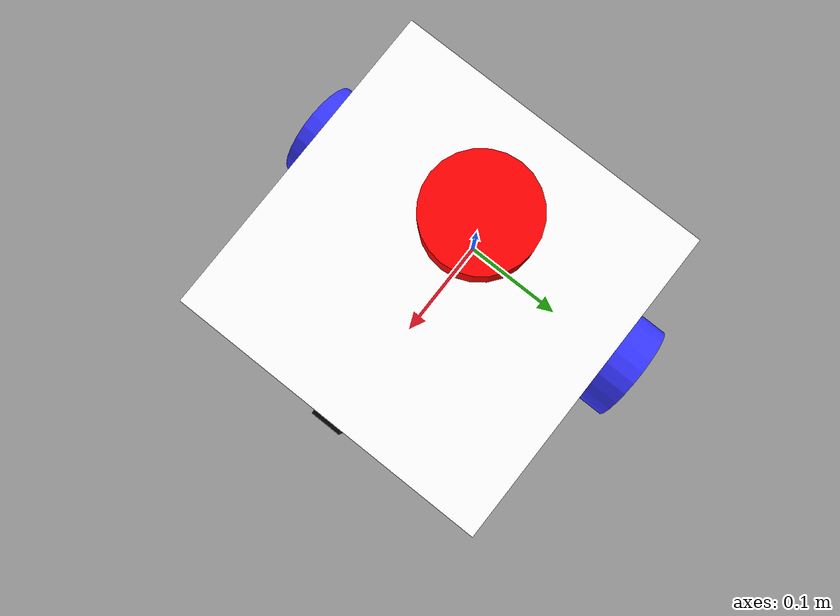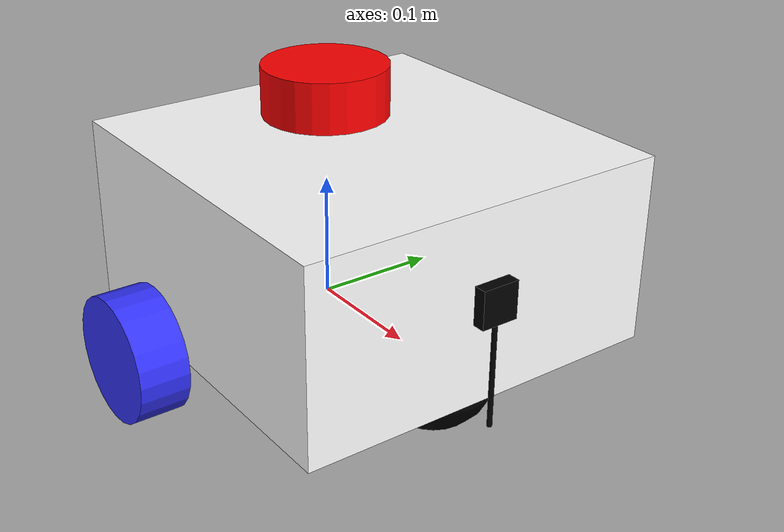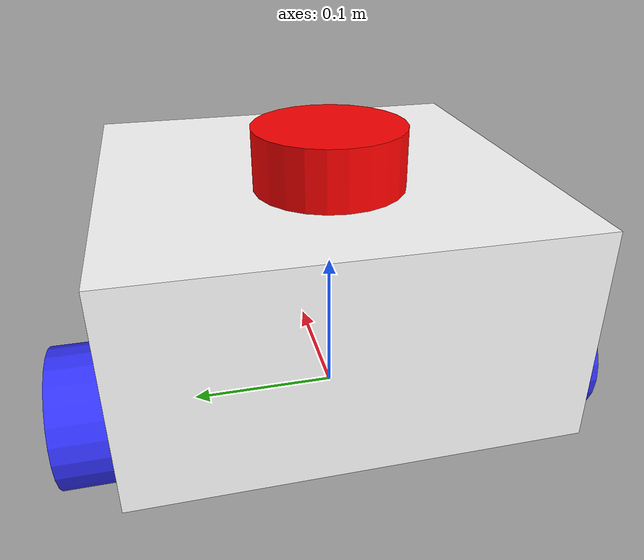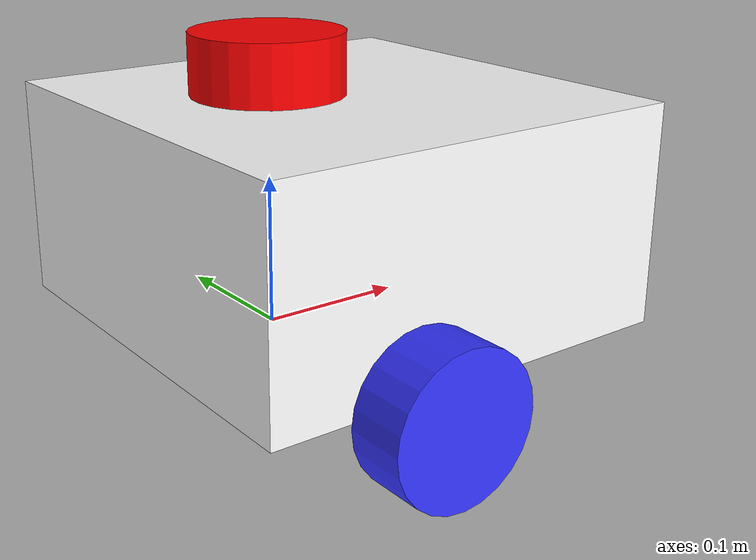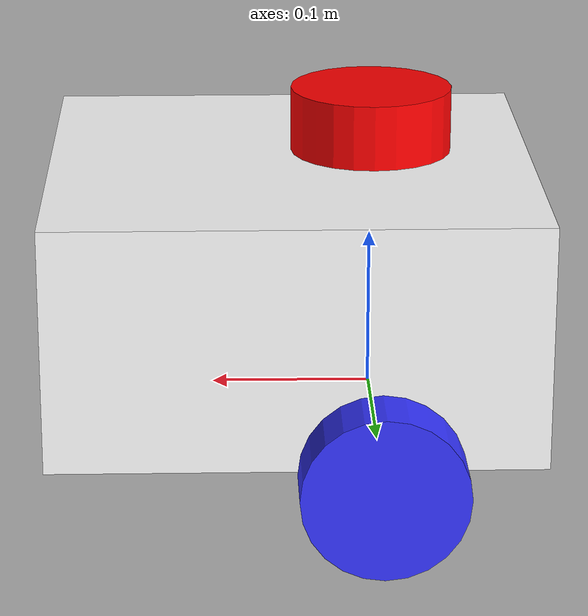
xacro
<?xml version="1.0"?>
<robot name="dd_bot" xmlns:xacro="http://ros.org/wiki/xacro">
    <xacro:include filename="robot_core.xacro"/>
    <xacro:include filename="ros2_control.xacro"/>
    <xacro:include filename="lidar.xacro"/>
    <xacro:include filename="camera.xacro"/>
</robot>

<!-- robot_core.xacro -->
<robot xmlns:xacro="http://ros.org/wiki/xacro">

    <xacro:include filename="inertial_macros.xacro"/>

    <material name="white">
        <color rgba="1 1 1 1" />
    </material>

    <material name="orange">
        <color rgba="1 0.3 0.1 1"/>
    </material>

    <material name="blue">
        <color rgba="0.2 0.2 1 1"/>
    </material>

    <material name="black">
        <color rgba="0 0 0 1"/>
    </material>

    <material name="red">
        <color rgba="1 0 0 1"/>
    </material>

    <!-- Base link -->
    <link name="base_link">

    </link>

    <joint name="base_footprint_joint" type="fixed">
        <parent link="base_link"/>
        <child link="base_footprint"/>
        <origin xyz="0 0 0" rpy="0 0 0"/>
    </joint>

    <link name="base_footprint">
    </link>

    <!-- Chassis link -->
    <joint name="chassis_joint" type="fixed">
        <parent link="base_link"/>
        <child link="chassis"/>
        <origin xyz="-0.1 0 0"/>
    </joint>

    <link name="chassis">
        <visual>
            <origin xyz="0.15 0 0.075"/>
            <geometry>
                <box size="0.3 0.3 0.15"/>
            </geometry>
            <material name="white"/>
        </visual>
        <collision>
            <origin xyz="0.15 0 0.075"/>
            <geometry>
                <box size="0.3 0.3 0.15"/>
            </geometry>
        </collision>
        <xacro:inertial_box mass="0.5" x= "0.3" y="0.3" z="0.15">
            <origin xyz="0.15 0 0.075" rpy="0 0 0"/>
        </xacro:inertial_box>
    </link>

    <gazebo reference="chassis">
        <material>Gazebo/White</material>
    </gazebo>

    <!-- Left wheel link -->
    <joint name="left_wheel_joint" type="continuous">
        <parent link="base_link"/>
        <child link="left_wheel"/>
        <origin xyz="0 0.175 0" rpy="-${pi/2} 0 0"></origin>
        <axis xyz="0 0 1"/>
    </joint>

    <link name="left_wheel">
        <visual>
            <geometry>
                <cylinder radius="0.05" length="0.04"/>
            </geometry>
            <material name="blue"></material>
        </visual>
        <collision>
            <geometry>
                <cylinder radius="0.05" length="0.04"/>
            </geometry>
        </collision>
        <xacro:inertial_cylinder mass="0.1" length="0.04" radius="0.05">
            <origin xyz="0 0 0" rpy="0 0 0"/>
        </xacro:inertial_cylinder>
    </link>

    <gazebo reference="left_wheel">
        <material>Gazebo/Blue</material>
    </gazebo>

    <!-- Right wheel link -->

    <joint name="right_wheel_joint" type="continuous">
        <parent link="base_link"/>
        <child link="right_wheel"/>
        <origin xyz="0 -0.175 0" rpy="${pi/2} 0 0"></origin>
        <axis xyz="0 0 -1"/>
    </joint>

    <link name="right_wheel">
        <visual>
            <geometry>
                <cylinder radius="0.05" length="0.04"/>
            </geometry>
            <material name="blue"></material>
        </visual>
        <collision>
            <geometry>
                <cylinder radius="0.05" length="0.04"/>
            </geometry>
        </collision>
        <xacro:inertial_cylinder mass="0.1" length="0.04" radius="0.05">
            <origin xyz="0 0 0" rpy="0 0 0"/>
        </xacro:inertial_cylinder>
    </link>

    <gazebo reference="right_wheel">
        <material>Gazebo/Blue</material>
    </gazebo>

    <!-- Caster wheel -->

    <joint name="caster_wheel_joint" type="fixed">
        <parent link="chassis"></parent>
        <child link="caster_wheel"/>
        <origin xyz="0.24 0 0"/>
    </joint>

    <link name="caster_wheel">
        <visual>
            <geometry>
                <sphere radius="0.05"/>
            </geometry>
            <material name="black"/>
        </visual>
        <collision>
            <geometry>
                <sphere radius="0.05"/>
            </geometry>
        </collision>
        <xacro:inertial_sphere mass="0.1" radius="0.05">
            <origin xyz="0 0 0" rpy="0 0 0"/>
        </xacro:inertial_sphere>
    </link>

    <gazebo reference="caster_wheel">
        <material>Gazebo/Black</material>
        <mu1 value="0.001"/>
        <mu2 value="0.001"/>
    </gazebo>
</robot>

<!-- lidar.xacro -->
<robot xmlns:xacro="http://ros.org/wiki/xacro">
    <joint name="laser_joint" type="fixed">
        <parent link="chassis"/>
        <child link="laser_frame"/>
        <origin xyz="0.1 0 0.175" rpy="0 0 0"/>
    </joint>

    <link name="laser_frame">
        <visual>
            <geometry>
                <cylinder radius="0.05" length="0.04"/>
            </geometry>
            <material name="red"></material>
        </visual>
        <collision>
            <geometry>
                <cylinder radius="0.05" length="0.04"/>
            </geometry>
        </collision>
        <xacro:inertial_cylinder mass="0.1" length="0.04" radius="0.05">
            <origin xyz="0 0 0" rpy="0 0 0"/>
        </xacro:inertial_cylinder>
    </link>

    <gazebo reference="laser_frame">
        <material>Gazebo/Red</material>
        <sensor name="laser" type="gpu_lidar">
            <pose> 0 0 0 0 0 0 </pose>
            <always_on>true</always_on>
            <visualize>true</visualize>
            <update_rate>10</update_rate>
            <lidar>
                <scan>
                    <horizontal>
                        <samples>360</samples>
                        <resolution>1</resolution>
                        <min_angle>-3.14159</min_angle>
                        <max_angle> 3.14159</max_angle>
                    </horizontal>

                    <vertical>
                        <samples>1</samples>
                        <resolution>1</resolution>
                        <min_angle>0</min_angle>
                        <max_angle>0</max_angle>
                    </vertical>
                </scan>
                <range>
                    <min>0.15</min>
                    <max>20.0</max>
                    <resolution>0.01</resolution>
                </range>
            </lidar>
            <topic>scan</topic>
            <gz_frame_id>laser_frame</gz_frame_id>
        </sensor>
    </gazebo>
</robot>

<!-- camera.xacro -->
<robot xmlns:xacro="http://ros.org/wiki/xacro">
    <joint name="camera_joint" type="fixed">
        <parent link="chassis"/>
        <child link="camera_link"/>
        <origin xyz="0.305 0 0.08" rpy="0 0 0"/>
    </joint>

    <link name="camera_link">
        <visual>
            <geometry>
                <box size="0.010 0.03 0.03"/>
            </geometry>
            <material name="black"></material>
        </visual>
        <visual>
            <origin xyz="0 0 -0.05"/>
            <geometry>
                <cylinder radius="0.002" length="0.1"/>
            </geometry>
            <material name="black"/>
        </visual>
        <inertial>
            <mass value="0.05"/>
            <origin xyz="0 0 0" rpy="0 0 0"/>
            <inertia ixx="1e-5" ixy="0" ixz="0" iyy="1e-5" iyz="0" izz="1e-5"/>
        </inertial>
    </link>

    <joint name="camera_optical_joint" type="fixed">
        <parent link="camera_link"/>
        <child link="camera_link_optical"/>
        <origin xyz="0 0 0" rpy="${-pi/2} 0 ${-pi/2}"/>
    </joint>

    <link name="camera_link_optical"/>

    <gazebo reference="camera_link">
        <material>Gazebo/Black</material>
        <sensor name="camera" type="camera">
            <pose> 0 0 0 0 0 0 </pose>
            <visualize>true</visualize>
            <update_rate>10</update_rate>
            <camera>
                <horizontal_fov>1.089</horizontal_fov>
                <image>
                    <format>R8G8B8</format>
                    <width>640</width>
                    <height>480</height>
                </image>
                <clip>
                    <near>0.05</near>
                    <far>8.0</far>
                </clip>
                <camera_info_topic>camera/camera_info</camera_info_topic>
                <optical_frame_id>camera_link_optical</optical_frame_id>
            </camera>
            <topic>camera/image_raw</topic>
            <gz_frame_id>camera_link_optical</gz_frame_id>
        </sensor>
    </gazebo>
</robot>
